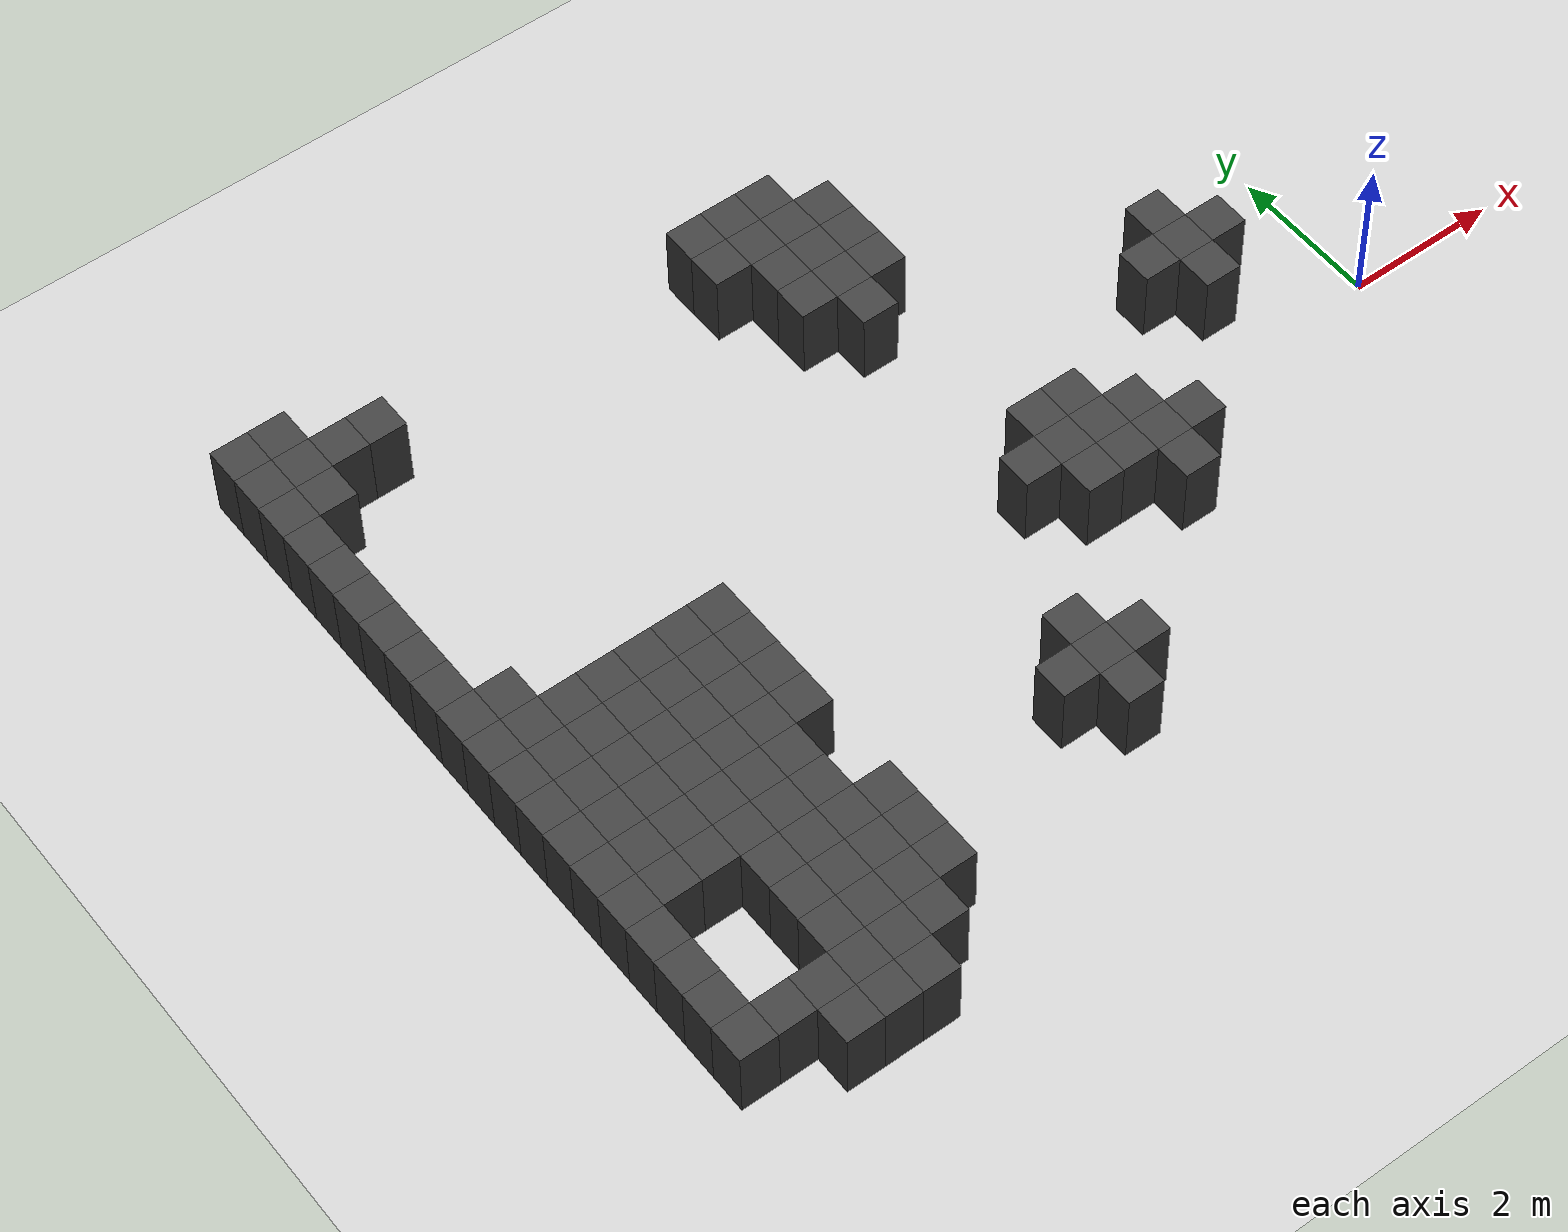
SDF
<sdf version="1.7">
 <world name="map_9152">
  <model name="ground_plane">
   <static>true</static>
   <link name="link">
    <collision name="collision">
     <geometry><plane><normal>0 0 1</normal><size>200 200</size></plane></geometry>
    </collision>
    <visual name="visual">
     <geometry><plane><normal>0 0 1</normal><size>200 200</size></plane></geometry>
     <material><ambient>0.8 0.8 0.8 1</ambient><diffuse>0.8 0.8 0.8 1</diffuse></material>
    </visual>
   </link>
  </model>
  <model name="maze_environment">
   <static>true</static>
   <link name="wall_256">
    <pose>-12.250 5.250 0.500 0 0 0</pose>
    <collision name="col"><geometry><box><size>0.5 0.5 1.0</size></box></geometry></collision>
    <visual name="vis">
     <geometry><box><size>0.5 0.5 1.0</size></box></geometry>
     <material><ambient>0.15 0.15 0.15 1</ambient><diffuse>0.25 0.25 0.25 1</diffuse></material>
    </visual>
   </link>
   <link name="wall_257">
    <pose>-11.750 5.250 0.500 0 0 0</pose>
    <collision name="col"><geometry><box><size>0.5 0.5 1.0</size></box></geometry></collision>
    <visual name="vis">
     <geometry><box><size>0.5 0.5 1.0</size></box></geometry>
     <material><ambient>0.15 0.15 0.15 1</ambient><diffuse>0.25 0.25 0.25 1</diffuse></material>
    </visual>
   </link>
   <link name="wall_282">
    <pose>-12.250 4.750 0.500 0 0 0</pose>
    <collision name="col"><geometry><box><size>0.5 0.5 1.0</size></box></geometry></collision>
    <visual name="vis">
     <geometry><box><size>0.5 0.5 1.0</size></box></geometry>
     <material><ambient>0.15 0.15 0.15 1</ambient><diffuse>0.25 0.25 0.25 1</diffuse></material>
    </visual>
   </link>
   <link name="wall_283">
    <pose>-11.750 4.750 0.500 0 0 0</pose>
    <collision name="col"><geometry><box><size>0.5 0.5 1.0</size></box></geometry></collision>
    <visual name="vis">
     <geometry><box><size>0.5 0.5 1.0</size></box></geometry>
     <material><ambient>0.15 0.15 0.15 1</ambient><diffuse>0.25 0.25 0.25 1</diffuse></material>
    </visual>
   </link>
   <link name="wall_284">
    <pose>-11.250 4.750 0.500 0 0 0</pose>
    <collision name="col"><geometry><box><size>0.5 0.5 1.0</size></box></geometry></collision>
    <visual name="vis">
     <geometry><box><size>0.5 0.5 1.0</size></box></geometry>
     <material><ambient>0.15 0.15 0.15 1</ambient><diffuse>0.25 0.25 0.25 1</diffuse></material>
    </visual>
   </link>
   <link name="wall_285">
    <pose>-10.750 4.750 0.500 0 0 0</pose>
    <collision name="col"><geometry><box><size>0.5 0.5 1.0</size></box></geometry></collision>
    <visual name="vis">
     <geometry><box><size>0.5 0.5 1.0</size></box></geometry>
     <material><ambient>0.15 0.15 0.15 1</ambient><diffuse>0.25 0.25 0.25 1</diffuse></material>
    </visual>
   </link>
   <link name="wall_286">
    <pose>-6.250 4.750 0.500 0 0 0</pose>
    <collision name="col"><geometry><box><size>0.5 0.5 1.0</size></box></geometry></collision>
    <visual name="vis">
     <geometry><box><size>0.5 0.5 1.0</size></box></geometry>
     <material><ambient>0.15 0.15 0.15 1</ambient><diffuse>0.25 0.25 0.25 1</diffuse></material>
    </visual>
   </link>
   <link name="wall_287">
    <pose>-5.750 4.750 0.500 0 0 0</pose>
    <collision name="col"><geometry><box><size>0.5 0.5 1.0</size></box></geometry></collision>
    <visual name="vis">
     <geometry><box><size>0.5 0.5 1.0</size></box></geometry>
     <material><ambient>0.15 0.15 0.15 1</ambient><diffuse>0.25 0.25 0.25 1</diffuse></material>
    </visual>
   </link>
   <link name="wall_288">
    <pose>-5.250 4.750 0.500 0 0 0</pose>
    <collision name="col"><geometry><box><size>0.5 0.5 1.0</size></box></geometry></collision>
    <visual name="vis">
     <geometry><box><size>0.5 0.5 1.0</size></box></geometry>
     <material><ambient>0.15 0.15 0.15 1</ambient><diffuse>0.25 0.25 0.25 1</diffuse></material>
    </visual>
   </link>
   <link name="wall_301">
    <pose>-12.250 4.250 0.500 0 0 0</pose>
    <collision name="col"><geometry><box><size>0.5 0.5 1.0</size></box></geometry></collision>
    <visual name="vis">
     <geometry><box><size>0.5 0.5 1.0</size></box></geometry>
     <material><ambient>0.15 0.15 0.15 1</ambient><diffuse>0.25 0.25 0.25 1</diffuse></material>
    </visual>
   </link>
   <link name="wall_302">
    <pose>-11.750 4.250 0.500 0 0 0</pose>
    <collision name="col"><geometry><box><size>0.5 0.5 1.0</size></box></geometry></collision>
    <visual name="vis">
     <geometry><box><size>0.5 0.5 1.0</size></box></geometry>
     <material><ambient>0.15 0.15 0.15 1</ambient><diffuse>0.25 0.25 0.25 1</diffuse></material>
    </visual>
   </link>
   <link name="wall_303">
    <pose>-6.250 4.250 0.500 0 0 0</pose>
    <collision name="col"><geometry><box><size>0.5 0.5 1.0</size></box></geometry></collision>
    <visual name="vis">
     <geometry><box><size>0.5 0.5 1.0</size></box></geometry>
     <material><ambient>0.15 0.15 0.15 1</ambient><diffuse>0.25 0.25 0.25 1</diffuse></material>
    </visual>
   </link>
   <link name="wall_304">
    <pose>-5.750 4.250 0.500 0 0 0</pose>
    <collision name="col"><geometry><box><size>0.5 0.5 1.0</size></box></geometry></collision>
    <visual name="vis">
     <geometry><box><size>0.5 0.5 1.0</size></box></geometry>
     <material><ambient>0.15 0.15 0.15 1</ambient><diffuse>0.25 0.25 0.25 1</diffuse></material>
    </visual>
   </link>
   <link name="wall_305">
    <pose>-5.250 4.250 0.500 0 0 0</pose>
    <collision name="col"><geometry><box><size>0.5 0.5 1.0</size></box></geometry></collision>
    <visual name="vis">
     <geometry><box><size>0.5 0.5 1.0</size></box></geometry>
     <material><ambient>0.15 0.15 0.15 1</ambient><diffuse>0.25 0.25 0.25 1</diffuse></material>
    </visual>
   </link>
   <link name="wall_306">
    <pose>-4.750 4.250 0.500 0 0 0</pose>
    <collision name="col"><geometry><box><size>0.5 0.5 1.0</size></box></geometry></collision>
    <visual name="vis">
     <geometry><box><size>0.5 0.5 1.0</size></box></geometry>
     <material><ambient>0.15 0.15 0.15 1</ambient><diffuse>0.25 0.25 0.25 1</diffuse></material>
    </visual>
   </link>
   <link name="wall_312">
    <pose>-12.250 3.750 0.500 0 0 0</pose>
    <collision name="col"><geometry><box><size>0.5 0.5 1.0</size></box></geometry></collision>
    <visual name="vis">
     <geometry><box><size>0.5 0.5 1.0</size></box></geometry>
     <material><ambient>0.15 0.15 0.15 1</ambient><diffuse>0.25 0.25 0.25 1</diffuse></material>
    </visual>
   </link>
   <link name="wall_313">
    <pose>-5.750 3.750 0.500 0 0 0</pose>
    <collision name="col"><geometry><box><size>0.5 0.5 1.0</size></box></geometry></collision>
    <visual name="vis">
     <geometry><box><size>0.5 0.5 1.0</size></box></geometry>
     <material><ambient>0.15 0.15 0.15 1</ambient><diffuse>0.25 0.25 0.25 1</diffuse></material>
    </visual>
   </link>
   <link name="wall_314">
    <pose>-5.250 3.750 0.500 0 0 0</pose>
    <collision name="col"><geometry><box><size>0.5 0.5 1.0</size></box></geometry></collision>
    <visual name="vis">
     <geometry><box><size>0.5 0.5 1.0</size></box></geometry>
     <material><ambient>0.15 0.15 0.15 1</ambient><diffuse>0.25 0.25 0.25 1</diffuse></material>
    </visual>
   </link>
   <link name="wall_315">
    <pose>-4.750 3.750 0.500 0 0 0</pose>
    <collision name="col"><geometry><box><size>0.5 0.5 1.0</size></box></geometry></collision>
    <visual name="vis">
     <geometry><box><size>0.5 0.5 1.0</size></box></geometry>
     <material><ambient>0.15 0.15 0.15 1</ambient><diffuse>0.25 0.25 0.25 1</diffuse></material>
    </visual>
   </link>
   <link name="wall_324">
    <pose>-12.250 3.250 0.500 0 0 0</pose>
    <collision name="col"><geometry><box><size>0.5 0.5 1.0</size></box></geometry></collision>
    <visual name="vis">
     <geometry><box><size>0.5 0.5 1.0</size></box></geometry>
     <material><ambient>0.15 0.15 0.15 1</ambient><diffuse>0.25 0.25 0.25 1</diffuse></material>
    </visual>
   </link>
   <link name="wall_325">
    <pose>-5.750 3.250 0.500 0 0 0</pose>
    <collision name="col"><geometry><box><size>0.5 0.5 1.0</size></box></geometry></collision>
    <visual name="vis">
     <geometry><box><size>0.5 0.5 1.0</size></box></geometry>
     <material><ambient>0.15 0.15 0.15 1</ambient><diffuse>0.25 0.25 0.25 1</diffuse></material>
    </visual>
   </link>
   <link name="wall_326">
    <pose>-5.250 3.250 0.500 0 0 0</pose>
    <collision name="col"><geometry><box><size>0.5 0.5 1.0</size></box></geometry></collision>
    <visual name="vis">
     <geometry><box><size>0.5 0.5 1.0</size></box></geometry>
     <material><ambient>0.15 0.15 0.15 1</ambient><diffuse>0.25 0.25 0.25 1</diffuse></material>
    </visual>
   </link>
   <link name="wall_327">
    <pose>-4.750 3.250 0.500 0 0 0</pose>
    <collision name="col"><geometry><box><size>0.5 0.5 1.0</size></box></geometry></collision>
    <visual name="vis">
     <geometry><box><size>0.5 0.5 1.0</size></box></geometry>
     <material><ambient>0.15 0.15 0.15 1</ambient><diffuse>0.25 0.25 0.25 1</diffuse></material>
    </visual>
   </link>
   <link name="wall_339">
    <pose>-12.250 2.750 0.500 0 0 0</pose>
    <collision name="col"><geometry><box><size>0.5 0.5 1.0</size></box></geometry></collision>
    <visual name="vis">
     <geometry><box><size>0.5 0.5 1.0</size></box></geometry>
     <material><ambient>0.15 0.15 0.15 1</ambient><diffuse>0.25 0.25 0.25 1</diffuse></material>
    </visual>
   </link>
   <link name="wall_340">
    <pose>-5.250 2.750 0.500 0 0 0</pose>
    <collision name="col"><geometry><box><size>0.5 0.5 1.0</size></box></geometry></collision>
    <visual name="vis">
     <geometry><box><size>0.5 0.5 1.0</size></box></geometry>
     <material><ambient>0.15 0.15 0.15 1</ambient><diffuse>0.25 0.25 0.25 1</diffuse></material>
    </visual>
   </link>
   <link name="wall_352">
    <pose>-12.250 2.250 0.500 0 0 0</pose>
    <collision name="col"><geometry><box><size>0.5 0.5 1.0</size></box></geometry></collision>
    <visual name="vis">
     <geometry><box><size>0.5 0.5 1.0</size></box></geometry>
     <material><ambient>0.15 0.15 0.15 1</ambient><diffuse>0.25 0.25 0.25 1</diffuse></material>
    </visual>
   </link>
   <link name="wall_364">
    <pose>-12.250 1.750 0.500 0 0 0</pose>
    <collision name="col"><geometry><box><size>0.5 0.5 1.0</size></box></geometry></collision>
    <visual name="vis">
     <geometry><box><size>0.5 0.5 1.0</size></box></geometry>
     <material><ambient>0.15 0.15 0.15 1</ambient><diffuse>0.25 0.25 0.25 1</diffuse></material>
    </visual>
   </link>
   <link name="wall_365">
    <pose>-1.750 1.750 0.500 0 0 0</pose>
    <collision name="col"><geometry><box><size>0.5 0.5 1.0</size></box></geometry></collision>
    <visual name="vis">
     <geometry><box><size>0.5 0.5 1.0</size></box></geometry>
     <material><ambient>0.15 0.15 0.15 1</ambient><diffuse>0.25 0.25 0.25 1</diffuse></material>
    </visual>
   </link>
   <link name="wall_372">
    <pose>-12.250 1.250 0.500 0 0 0</pose>
    <collision name="col"><geometry><box><size>0.5 0.5 1.0</size></box></geometry></collision>
    <visual name="vis">
     <geometry><box><size>0.5 0.5 1.0</size></box></geometry>
     <material><ambient>0.15 0.15 0.15 1</ambient><diffuse>0.25 0.25 0.25 1</diffuse></material>
    </visual>
   </link>
   <link name="wall_373">
    <pose>-2.250 1.250 0.500 0 0 0</pose>
    <collision name="col"><geometry><box><size>0.5 0.5 1.0</size></box></geometry></collision>
    <visual name="vis">
     <geometry><box><size>0.5 0.5 1.0</size></box></geometry>
     <material><ambient>0.15 0.15 0.15 1</ambient><diffuse>0.25 0.25 0.25 1</diffuse></material>
    </visual>
   </link>
   <link name="wall_374">
    <pose>-1.750 1.250 0.500 0 0 0</pose>
    <collision name="col"><geometry><box><size>0.5 0.5 1.0</size></box></geometry></collision>
    <visual name="vis">
     <geometry><box><size>0.5 0.5 1.0</size></box></geometry>
     <material><ambient>0.15 0.15 0.15 1</ambient><diffuse>0.25 0.25 0.25 1</diffuse></material>
    </visual>
   </link>
   <link name="wall_375">
    <pose>-1.250 1.250 0.500 0 0 0</pose>
    <collision name="col"><geometry><box><size>0.5 0.5 1.0</size></box></geometry></collision>
    <visual name="vis">
     <geometry><box><size>0.5 0.5 1.0</size></box></geometry>
     <material><ambient>0.15 0.15 0.15 1</ambient><diffuse>0.25 0.25 0.25 1</diffuse></material>
    </visual>
   </link>
   <link name="wall_382">
    <pose>-12.250 0.750 0.500 0 0 0</pose>
    <collision name="col"><geometry><box><size>0.5 0.5 1.0</size></box></geometry></collision>
    <visual name="vis">
     <geometry><box><size>0.5 0.5 1.0</size></box></geometry>
     <material><ambient>0.15 0.15 0.15 1</ambient><diffuse>0.25 0.25 0.25 1</diffuse></material>
    </visual>
   </link>
   <link name="wall_383">
    <pose>-11.750 0.750 0.500 0 0 0</pose>
    <collision name="col"><geometry><box><size>0.5 0.5 1.0</size></box></geometry></collision>
    <visual name="vis">
     <geometry><box><size>0.5 0.5 1.0</size></box></geometry>
     <material><ambient>0.15 0.15 0.15 1</ambient><diffuse>0.25 0.25 0.25 1</diffuse></material>
    </visual>
   </link>
   <link name="wall_384">
    <pose>-1.750 0.750 0.500 0 0 0</pose>
    <collision name="col"><geometry><box><size>0.5 0.5 1.0</size></box></geometry></collision>
    <visual name="vis">
     <geometry><box><size>0.5 0.5 1.0</size></box></geometry>
     <material><ambient>0.15 0.15 0.15 1</ambient><diffuse>0.25 0.25 0.25 1</diffuse></material>
    </visual>
   </link>
   <link name="wall_391">
    <pose>-12.250 0.250 0.500 0 0 0</pose>
    <collision name="col"><geometry><box><size>0.5 0.5 1.0</size></box></geometry></collision>
    <visual name="vis">
     <geometry><box><size>0.5 0.5 1.0</size></box></geometry>
     <material><ambient>0.15 0.15 0.15 1</ambient><diffuse>0.25 0.25 0.25 1</diffuse></material>
    </visual>
   </link>
   <link name="wall_392">
    <pose>-11.750 0.250 0.500 0 0 0</pose>
    <collision name="col"><geometry><box><size>0.5 0.5 1.0</size></box></geometry></collision>
    <visual name="vis">
     <geometry><box><size>0.5 0.5 1.0</size></box></geometry>
     <material><ambient>0.15 0.15 0.15 1</ambient><diffuse>0.25 0.25 0.25 1</diffuse></material>
    </visual>
   </link>
   <link name="wall_393">
    <pose>-11.250 0.250 0.500 0 0 0</pose>
    <collision name="col"><geometry><box><size>0.5 0.5 1.0</size></box></geometry></collision>
    <visual name="vis">
     <geometry><box><size>0.5 0.5 1.0</size></box></geometry>
     <material><ambient>0.15 0.15 0.15 1</ambient><diffuse>0.25 0.25 0.25 1</diffuse></material>
    </visual>
   </link>
   <link name="wall_394">
    <pose>-10.750 0.250 0.500 0 0 0</pose>
    <collision name="col"><geometry><box><size>0.5 0.5 1.0</size></box></geometry></collision>
    <visual name="vis">
     <geometry><box><size>0.5 0.5 1.0</size></box></geometry>
     <material><ambient>0.15 0.15 0.15 1</ambient><diffuse>0.25 0.25 0.25 1</diffuse></material>
    </visual>
   </link>
   <link name="wall_395">
    <pose>-10.250 0.250 0.500 0 0 0</pose>
    <collision name="col"><geometry><box><size>0.5 0.5 1.0</size></box></geometry></collision>
    <visual name="vis">
     <geometry><box><size>0.5 0.5 1.0</size></box></geometry>
     <material><ambient>0.15 0.15 0.15 1</ambient><diffuse>0.25 0.25 0.25 1</diffuse></material>
    </visual>
   </link>
   <link name="wall_396">
    <pose>-9.750 0.250 0.500 0 0 0</pose>
    <collision name="col"><geometry><box><size>0.5 0.5 1.0</size></box></geometry></collision>
    <visual name="vis">
     <geometry><box><size>0.5 0.5 1.0</size></box></geometry>
     <material><ambient>0.15 0.15 0.15 1</ambient><diffuse>0.25 0.25 0.25 1</diffuse></material>
    </visual>
   </link>
   <link name="wall_397">
    <pose>-9.250 0.250 0.500 0 0 0</pose>
    <collision name="col"><geometry><box><size>0.5 0.5 1.0</size></box></geometry></collision>
    <visual name="vis">
     <geometry><box><size>0.5 0.5 1.0</size></box></geometry>
     <material><ambient>0.15 0.15 0.15 1</ambient><diffuse>0.25 0.25 0.25 1</diffuse></material>
    </visual>
   </link>
   <link name="wall_398">
    <pose>-4.750 0.250 0.500 0 0 0</pose>
    <collision name="col"><geometry><box><size>0.5 0.5 1.0</size></box></geometry></collision>
    <visual name="vis">
     <geometry><box><size>0.5 0.5 1.0</size></box></geometry>
     <material><ambient>0.15 0.15 0.15 1</ambient><diffuse>0.25 0.25 0.25 1</diffuse></material>
    </visual>
   </link>
   <link name="wall_399">
    <pose>-4.250 0.250 0.500 0 0 0</pose>
    <collision name="col"><geometry><box><size>0.5 0.5 1.0</size></box></geometry></collision>
    <visual name="vis">
     <geometry><box><size>0.5 0.5 1.0</size></box></geometry>
     <material><ambient>0.15 0.15 0.15 1</ambient><diffuse>0.25 0.25 0.25 1</diffuse></material>
    </visual>
   </link>
   <link name="wall_410">
    <pose>-12.250 -0.250 0.500 0 0 0</pose>
    <collision name="col"><geometry><box><size>0.5 0.5 1.0</size></box></geometry></collision>
    <visual name="vis">
     <geometry><box><size>0.5 0.5 1.0</size></box></geometry>
     <material><ambient>0.15 0.15 0.15 1</ambient><diffuse>0.25 0.25 0.25 1</diffuse></material>
    </visual>
   </link>
   <link name="wall_411">
    <pose>-11.750 -0.250 0.500 0 0 0</pose>
    <collision name="col"><geometry><box><size>0.5 0.5 1.0</size></box></geometry></collision>
    <visual name="vis">
     <geometry><box><size>0.5 0.5 1.0</size></box></geometry>
     <material><ambient>0.15 0.15 0.15 1</ambient><diffuse>0.25 0.25 0.25 1</diffuse></material>
    </visual>
   </link>
   <link name="wall_412">
    <pose>-11.250 -0.250 0.500 0 0 0</pose>
    <collision name="col"><geometry><box><size>0.5 0.5 1.0</size></box></geometry></collision>
    <visual name="vis">
     <geometry><box><size>0.5 0.5 1.0</size></box></geometry>
     <material><ambient>0.15 0.15 0.15 1</ambient><diffuse>0.25 0.25 0.25 1</diffuse></material>
    </visual>
   </link>
   <link name="wall_413">
    <pose>-10.750 -0.250 0.500 0 0 0</pose>
    <collision name="col"><geometry><box><size>0.5 0.5 1.0</size></box></geometry></collision>
    <visual name="vis">
     <geometry><box><size>0.5 0.5 1.0</size></box></geometry>
     <material><ambient>0.15 0.15 0.15 1</ambient><diffuse>0.25 0.25 0.25 1</diffuse></material>
    </visual>
   </link>
   <link name="wall_414">
    <pose>-10.250 -0.250 0.500 0 0 0</pose>
    <collision name="col"><geometry><box><size>0.5 0.5 1.0</size></box></geometry></collision>
    <visual name="vis">
     <geometry><box><size>0.5 0.5 1.0</size></box></geometry>
     <material><ambient>0.15 0.15 0.15 1</ambient><diffuse>0.25 0.25 0.25 1</diffuse></material>
    </visual>
   </link>
   <link name="wall_415">
    <pose>-9.750 -0.250 0.500 0 0 0</pose>
    <collision name="col"><geometry><box><size>0.5 0.5 1.0</size></box></geometry></collision>
    <visual name="vis">
     <geometry><box><size>0.5 0.5 1.0</size></box></geometry>
     <material><ambient>0.15 0.15 0.15 1</ambient><diffuse>0.25 0.25 0.25 1</diffuse></material>
    </visual>
   </link>
   <link name="wall_416">
    <pose>-9.250 -0.250 0.500 0 0 0</pose>
    <collision name="col"><geometry><box><size>0.5 0.5 1.0</size></box></geometry></collision>
    <visual name="vis">
     <geometry><box><size>0.5 0.5 1.0</size></box></geometry>
     <material><ambient>0.15 0.15 0.15 1</ambient><diffuse>0.25 0.25 0.25 1</diffuse></material>
    </visual>
   </link>
   <link name="wall_417">
    <pose>-5.250 -0.250 0.500 0 0 0</pose>
    <collision name="col"><geometry><box><size>0.5 0.5 1.0</size></box></geometry></collision>
    <visual name="vis">
     <geometry><box><size>0.5 0.5 1.0</size></box></geometry>
     <material><ambient>0.15 0.15 0.15 1</ambient><diffuse>0.25 0.25 0.25 1</diffuse></material>
    </visual>
   </link>
   <link name="wall_418">
    <pose>-4.750 -0.250 0.500 0 0 0</pose>
    <collision name="col"><geometry><box><size>0.5 0.5 1.0</size></box></geometry></collision>
    <visual name="vis">
     <geometry><box><size>0.5 0.5 1.0</size></box></geometry>
     <material><ambient>0.15 0.15 0.15 1</ambient><diffuse>0.25 0.25 0.25 1</diffuse></material>
    </visual>
   </link>
   <link name="wall_419">
    <pose>-4.250 -0.250 0.500 0 0 0</pose>
    <collision name="col"><geometry><box><size>0.5 0.5 1.0</size></box></geometry></collision>
    <visual name="vis">
     <geometry><box><size>0.5 0.5 1.0</size></box></geometry>
     <material><ambient>0.15 0.15 0.15 1</ambient><diffuse>0.25 0.25 0.25 1</diffuse></material>
    </visual>
   </link>
   <link name="wall_420">
    <pose>-3.750 -0.250 0.500 0 0 0</pose>
    <collision name="col"><geometry><box><size>0.5 0.5 1.0</size></box></geometry></collision>
    <visual name="vis">
     <geometry><box><size>0.5 0.5 1.0</size></box></geometry>
     <material><ambient>0.15 0.15 0.15 1</ambient><diffuse>0.25 0.25 0.25 1</diffuse></material>
    </visual>
   </link>
   <link name="wall_430">
    <pose>-12.250 -0.750 0.500 0 0 0</pose>
    <collision name="col"><geometry><box><size>0.5 0.5 1.0</size></box></geometry></collision>
    <visual name="vis">
     <geometry><box><size>0.5 0.5 1.0</size></box></geometry>
     <material><ambient>0.15 0.15 0.15 1</ambient><diffuse>0.25 0.25 0.25 1</diffuse></material>
    </visual>
   </link>
   <link name="wall_431">
    <pose>-11.750 -0.750 0.500 0 0 0</pose>
    <collision name="col"><geometry><box><size>0.5 0.5 1.0</size></box></geometry></collision>
    <visual name="vis">
     <geometry><box><size>0.5 0.5 1.0</size></box></geometry>
     <material><ambient>0.15 0.15 0.15 1</ambient><diffuse>0.25 0.25 0.25 1</diffuse></material>
    </visual>
   </link>
   <link name="wall_432">
    <pose>-11.250 -0.750 0.500 0 0 0</pose>
    <collision name="col"><geometry><box><size>0.5 0.5 1.0</size></box></geometry></collision>
    <visual name="vis">
     <geometry><box><size>0.5 0.5 1.0</size></box></geometry>
     <material><ambient>0.15 0.15 0.15 1</ambient><diffuse>0.25 0.25 0.25 1</diffuse></material>
    </visual>
   </link>
   <link name="wall_433">
    <pose>-10.750 -0.750 0.500 0 0 0</pose>
    <collision name="col"><geometry><box><size>0.5 0.5 1.0</size></box></geometry></collision>
    <visual name="vis">
     <geometry><box><size>0.5 0.5 1.0</size></box></geometry>
     <material><ambient>0.15 0.15 0.15 1</ambient><diffuse>0.25 0.25 0.25 1</diffuse></material>
    </visual>
   </link>
   <link name="wall_434">
    <pose>-10.250 -0.750 0.500 0 0 0</pose>
    <collision name="col"><geometry><box><size>0.5 0.5 1.0</size></box></geometry></collision>
    <visual name="vis">
     <geometry><box><size>0.5 0.5 1.0</size></box></geometry>
     <material><ambient>0.15 0.15 0.15 1</ambient><diffuse>0.25 0.25 0.25 1</diffuse></material>
    </visual>
   </link>
   <link name="wall_435">
    <pose>-9.750 -0.750 0.500 0 0 0</pose>
    <collision name="col"><geometry><box><size>0.5 0.5 1.0</size></box></geometry></collision>
    <visual name="vis">
     <geometry><box><size>0.5 0.5 1.0</size></box></geometry>
     <material><ambient>0.15 0.15 0.15 1</ambient><diffuse>0.25 0.25 0.25 1</diffuse></material>
    </visual>
   </link>
   <link name="wall_436">
    <pose>-9.250 -0.750 0.500 0 0 0</pose>
    <collision name="col"><geometry><box><size>0.5 0.5 1.0</size></box></geometry></collision>
    <visual name="vis">
     <geometry><box><size>0.5 0.5 1.0</size></box></geometry>
     <material><ambient>0.15 0.15 0.15 1</ambient><diffuse>0.25 0.25 0.25 1</diffuse></material>
    </visual>
   </link>
   <link name="wall_437">
    <pose>-4.750 -0.750 0.500 0 0 0</pose>
    <collision name="col"><geometry><box><size>0.5 0.5 1.0</size></box></geometry></collision>
    <visual name="vis">
     <geometry><box><size>0.5 0.5 1.0</size></box></geometry>
     <material><ambient>0.15 0.15 0.15 1</ambient><diffuse>0.25 0.25 0.25 1</diffuse></material>
    </visual>
   </link>
   <link name="wall_438">
    <pose>-4.250 -0.750 0.500 0 0 0</pose>
    <collision name="col"><geometry><box><size>0.5 0.5 1.0</size></box></geometry></collision>
    <visual name="vis">
     <geometry><box><size>0.5 0.5 1.0</size></box></geometry>
     <material><ambient>0.15 0.15 0.15 1</ambient><diffuse>0.25 0.25 0.25 1</diffuse></material>
    </visual>
   </link>
   <link name="wall_439">
    <pose>-3.750 -0.750 0.500 0 0 0</pose>
    <collision name="col"><geometry><box><size>0.5 0.5 1.0</size></box></geometry></collision>
    <visual name="vis">
     <geometry><box><size>0.5 0.5 1.0</size></box></geometry>
     <material><ambient>0.15 0.15 0.15 1</ambient><diffuse>0.25 0.25 0.25 1</diffuse></material>
    </visual>
   </link>
   <link name="wall_440">
    <pose>-3.250 -0.750 0.500 0 0 0</pose>
    <collision name="col"><geometry><box><size>0.5 0.5 1.0</size></box></geometry></collision>
    <visual name="vis">
     <geometry><box><size>0.5 0.5 1.0</size></box></geometry>
     <material><ambient>0.15 0.15 0.15 1</ambient><diffuse>0.25 0.25 0.25 1</diffuse></material>
    </visual>
   </link>
   <link name="wall_447">
    <pose>-12.250 -1.250 0.500 0 0 0</pose>
    <collision name="col"><geometry><box><size>0.5 0.5 1.0</size></box></geometry></collision>
    <visual name="vis">
     <geometry><box><size>0.5 0.5 1.0</size></box></geometry>
     <material><ambient>0.15 0.15 0.15 1</ambient><diffuse>0.25 0.25 0.25 1</diffuse></material>
    </visual>
   </link>
   <link name="wall_448">
    <pose>-11.750 -1.250 0.500 0 0 0</pose>
    <collision name="col"><geometry><box><size>0.5 0.5 1.0</size></box></geometry></collision>
    <visual name="vis">
     <geometry><box><size>0.5 0.5 1.0</size></box></geometry>
     <material><ambient>0.15 0.15 0.15 1</ambient><diffuse>0.25 0.25 0.25 1</diffuse></material>
    </visual>
   </link>
   <link name="wall_449">
    <pose>-11.250 -1.250 0.500 0 0 0</pose>
    <collision name="col"><geometry><box><size>0.5 0.5 1.0</size></box></geometry></collision>
    <visual name="vis">
     <geometry><box><size>0.5 0.5 1.0</size></box></geometry>
     <material><ambient>0.15 0.15 0.15 1</ambient><diffuse>0.25 0.25 0.25 1</diffuse></material>
    </visual>
   </link>
   <link name="wall_450">
    <pose>-10.750 -1.250 0.500 0 0 0</pose>
    <collision name="col"><geometry><box><size>0.5 0.5 1.0</size></box></geometry></collision>
    <visual name="vis">
     <geometry><box><size>0.5 0.5 1.0</size></box></geometry>
     <material><ambient>0.15 0.15 0.15 1</ambient><diffuse>0.25 0.25 0.25 1</diffuse></material>
    </visual>
   </link>
   <link name="wall_451">
    <pose>-10.250 -1.250 0.500 0 0 0</pose>
    <collision name="col"><geometry><box><size>0.5 0.5 1.0</size></box></geometry></collision>
    <visual name="vis">
     <geometry><box><size>0.5 0.5 1.0</size></box></geometry>
     <material><ambient>0.15 0.15 0.15 1</ambient><diffuse>0.25 0.25 0.25 1</diffuse></material>
    </visual>
   </link>
   <link name="wall_452">
    <pose>-9.750 -1.250 0.500 0 0 0</pose>
    <collision name="col"><geometry><box><size>0.5 0.5 1.0</size></box></geometry></collision>
    <visual name="vis">
     <geometry><box><size>0.5 0.5 1.0</size></box></geometry>
     <material><ambient>0.15 0.15 0.15 1</ambient><diffuse>0.25 0.25 0.25 1</diffuse></material>
    </visual>
   </link>
   <link name="wall_453">
    <pose>-9.250 -1.250 0.500 0 0 0</pose>
    <collision name="col"><geometry><box><size>0.5 0.5 1.0</size></box></geometry></collision>
    <visual name="vis">
     <geometry><box><size>0.5 0.5 1.0</size></box></geometry>
     <material><ambient>0.15 0.15 0.15 1</ambient><diffuse>0.25 0.25 0.25 1</diffuse></material>
    </visual>
   </link>
   <link name="wall_454">
    <pose>-3.750 -1.250 0.500 0 0 0</pose>
    <collision name="col"><geometry><box><size>0.5 0.5 1.0</size></box></geometry></collision>
    <visual name="vis">
     <geometry><box><size>0.5 0.5 1.0</size></box></geometry>
     <material><ambient>0.15 0.15 0.15 1</ambient><diffuse>0.25 0.25 0.25 1</diffuse></material>
    </visual>
   </link>
   <link name="wall_461">
    <pose>-12.250 -1.750 0.500 0 0 0</pose>
    <collision name="col"><geometry><box><size>0.5 0.5 1.0</size></box></geometry></collision>
    <visual name="vis">
     <geometry><box><size>0.5 0.5 1.0</size></box></geometry>
     <material><ambient>0.15 0.15 0.15 1</ambient><diffuse>0.25 0.25 0.25 1</diffuse></material>
    </visual>
   </link>
   <link name="wall_462">
    <pose>-11.750 -1.750 0.500 0 0 0</pose>
    <collision name="col"><geometry><box><size>0.5 0.5 1.0</size></box></geometry></collision>
    <visual name="vis">
     <geometry><box><size>0.5 0.5 1.0</size></box></geometry>
     <material><ambient>0.15 0.15 0.15 1</ambient><diffuse>0.25 0.25 0.25 1</diffuse></material>
    </visual>
   </link>
   <link name="wall_463">
    <pose>-11.250 -1.750 0.500 0 0 0</pose>
    <collision name="col"><geometry><box><size>0.5 0.5 1.0</size></box></geometry></collision>
    <visual name="vis">
     <geometry><box><size>0.5 0.5 1.0</size></box></geometry>
     <material><ambient>0.15 0.15 0.15 1</ambient><diffuse>0.25 0.25 0.25 1</diffuse></material>
    </visual>
   </link>
   <link name="wall_464">
    <pose>-10.750 -1.750 0.500 0 0 0</pose>
    <collision name="col"><geometry><box><size>0.5 0.5 1.0</size></box></geometry></collision>
    <visual name="vis">
     <geometry><box><size>0.5 0.5 1.0</size></box></geometry>
     <material><ambient>0.15 0.15 0.15 1</ambient><diffuse>0.25 0.25 0.25 1</diffuse></material>
    </visual>
   </link>
   <link name="wall_465">
    <pose>-10.250 -1.750 0.500 0 0 0</pose>
    <collision name="col"><geometry><box><size>0.5 0.5 1.0</size></box></geometry></collision>
    <visual name="vis">
     <geometry><box><size>0.5 0.5 1.0</size></box></geometry>
     <material><ambient>0.15 0.15 0.15 1</ambient><diffuse>0.25 0.25 0.25 1</diffuse></material>
    </visual>
   </link>
   <link name="wall_466">
    <pose>-9.750 -1.750 0.500 0 0 0</pose>
    <collision name="col"><geometry><box><size>0.5 0.5 1.0</size></box></geometry></collision>
    <visual name="vis">
     <geometry><box><size>0.5 0.5 1.0</size></box></geometry>
     <material><ambient>0.15 0.15 0.15 1</ambient><diffuse>0.25 0.25 0.25 1</diffuse></material>
    </visual>
   </link>
   <link name="wall_473">
    <pose>-12.250 -2.250 0.500 0 0 0</pose>
    <collision name="col"><geometry><box><size>0.5 0.5 1.0</size></box></geometry></collision>
    <visual name="vis">
     <geometry><box><size>0.5 0.5 1.0</size></box></geometry>
     <material><ambient>0.15 0.15 0.15 1</ambient><diffuse>0.25 0.25 0.25 1</diffuse></material>
    </visual>
   </link>
   <link name="wall_474">
    <pose>-11.750 -2.250 0.500 0 0 0</pose>
    <collision name="col"><geometry><box><size>0.5 0.5 1.0</size></box></geometry></collision>
    <visual name="vis">
     <geometry><box><size>0.5 0.5 1.0</size></box></geometry>
     <material><ambient>0.15 0.15 0.15 1</ambient><diffuse>0.25 0.25 0.25 1</diffuse></material>
    </visual>
   </link>
   <link name="wall_475">
    <pose>-11.250 -2.250 0.500 0 0 0</pose>
    <collision name="col"><geometry><box><size>0.5 0.5 1.0</size></box></geometry></collision>
    <visual name="vis">
     <geometry><box><size>0.5 0.5 1.0</size></box></geometry>
     <material><ambient>0.15 0.15 0.15 1</ambient><diffuse>0.25 0.25 0.25 1</diffuse></material>
    </visual>
   </link>
   <link name="wall_476">
    <pose>-10.750 -2.250 0.500 0 0 0</pose>
    <collision name="col"><geometry><box><size>0.5 0.5 1.0</size></box></geometry></collision>
    <visual name="vis">
     <geometry><box><size>0.5 0.5 1.0</size></box></geometry>
     <material><ambient>0.15 0.15 0.15 1</ambient><diffuse>0.25 0.25 0.25 1</diffuse></material>
    </visual>
   </link>
   <link name="wall_477">
    <pose>-10.250 -2.250 0.500 0 0 0</pose>
    <collision name="col"><geometry><box><size>0.5 0.5 1.0</size></box></geometry></collision>
    <visual name="vis">
     <geometry><box><size>0.5 0.5 1.0</size></box></geometry>
     <material><ambient>0.15 0.15 0.15 1</ambient><diffuse>0.25 0.25 0.25 1</diffuse></material>
    </visual>
   </link>
   <link name="wall_478">
    <pose>-9.750 -2.250 0.500 0 0 0</pose>
    <collision name="col"><geometry><box><size>0.5 0.5 1.0</size></box></geometry></collision>
    <visual name="vis">
     <geometry><box><size>0.5 0.5 1.0</size></box></geometry>
     <material><ambient>0.15 0.15 0.15 1</ambient><diffuse>0.25 0.25 0.25 1</diffuse></material>
    </visual>
   </link>
   <link name="wall_479">
    <pose>-6.250 -2.250 0.500 0 0 0</pose>
    <collision name="col"><geometry><box><size>0.5 0.5 1.0</size></box></geometry></collision>
    <visual name="vis">
     <geometry><box><size>0.5 0.5 1.0</size></box></geometry>
     <material><ambient>0.15 0.15 0.15 1</ambient><diffuse>0.25 0.25 0.25 1</diffuse></material>
    </visual>
   </link>
   <link name="wall_486">
    <pose>-12.250 -2.750 0.500 0 0 0</pose>
    <collision name="col"><geometry><box><size>0.5 0.5 1.0</size></box></geometry></collision>
    <visual name="vis">
     <geometry><box><size>0.5 0.5 1.0</size></box></geometry>
     <material><ambient>0.15 0.15 0.15 1</ambient><diffuse>0.25 0.25 0.25 1</diffuse></material>
    </visual>
   </link>
   <link name="wall_487">
    <pose>-10.750 -2.750 0.500 0 0 0</pose>
    <collision name="col"><geometry><box><size>0.5 0.5 1.0</size></box></geometry></collision>
    <visual name="vis">
     <geometry><box><size>0.5 0.5 1.0</size></box></geometry>
     <material><ambient>0.15 0.15 0.15 1</ambient><diffuse>0.25 0.25 0.25 1</diffuse></material>
    </visual>
   </link>
   <link name="wall_488">
    <pose>-10.250 -2.750 0.500 0 0 0</pose>
    <collision name="col"><geometry><box><size>0.5 0.5 1.0</size></box></geometry></collision>
    <visual name="vis">
     <geometry><box><size>0.5 0.5 1.0</size></box></geometry>
     <material><ambient>0.15 0.15 0.15 1</ambient><diffuse>0.25 0.25 0.25 1</diffuse></material>
    </visual>
   </link>
   <link name="wall_489">
    <pose>-9.750 -2.750 0.500 0 0 0</pose>
    <collision name="col"><geometry><box><size>0.5 0.5 1.0</size></box></geometry></collision>
    <visual name="vis">
     <geometry><box><size>0.5 0.5 1.0</size></box></geometry>
     <material><ambient>0.15 0.15 0.15 1</ambient><diffuse>0.25 0.25 0.25 1</diffuse></material>
    </visual>
   </link>
   <link name="wall_490">
    <pose>-9.250 -2.750 0.500 0 0 0</pose>
    <collision name="col"><geometry><box><size>0.5 0.5 1.0</size></box></geometry></collision>
    <visual name="vis">
     <geometry><box><size>0.5 0.5 1.0</size></box></geometry>
     <material><ambient>0.15 0.15 0.15 1</ambient><diffuse>0.25 0.25 0.25 1</diffuse></material>
    </visual>
   </link>
   <link name="wall_491">
    <pose>-6.750 -2.750 0.500 0 0 0</pose>
    <collision name="col"><geometry><box><size>0.5 0.5 1.0</size></box></geometry></collision>
    <visual name="vis">
     <geometry><box><size>0.5 0.5 1.0</size></box></geometry>
     <material><ambient>0.15 0.15 0.15 1</ambient><diffuse>0.25 0.25 0.25 1</diffuse></material>
    </visual>
   </link>
   <link name="wall_492">
    <pose>-6.250 -2.750 0.500 0 0 0</pose>
    <collision name="col"><geometry><box><size>0.5 0.5 1.0</size></box></geometry></collision>
    <visual name="vis">
     <geometry><box><size>0.5 0.5 1.0</size></box></geometry>
     <material><ambient>0.15 0.15 0.15 1</ambient><diffuse>0.25 0.25 0.25 1</diffuse></material>
    </visual>
   </link>
   <link name="wall_493">
    <pose>-5.750 -2.750 0.500 0 0 0</pose>
    <collision name="col"><geometry><box><size>0.5 0.5 1.0</size></box></geometry></collision>
    <visual name="vis">
     <geometry><box><size>0.5 0.5 1.0</size></box></geometry>
     <material><ambient>0.15 0.15 0.15 1</ambient><diffuse>0.25 0.25 0.25 1</diffuse></material>
    </visual>
   </link>
   <link name="wall_498">
    <pose>-12.250 -3.250 0.500 0 0 0</pose>
    <collision name="col"><geometry><box><size>0.5 0.5 1.0</size></box></geometry></collision>
    <visual name="vis">
     <geometry><box><size>0.5 0.5 1.0</size></box></geometry>
     <material><ambient>0.15 0.15 0.15 1</ambient><diffuse>0.25 0.25 0.25 1</diffuse></material>
    </visual>
   </link>
   <link name="wall_499">
    <pose>-10.750 -3.250 0.500 0 0 0</pose>
    <collision name="col"><geometry><box><size>0.5 0.5 1.0</size></box></geometry></collision>
    <visual name="vis">
     <geometry><box><size>0.5 0.5 1.0</size></box></geometry>
     <material><ambient>0.15 0.15 0.15 1</ambient><diffuse>0.25 0.25 0.25 1</diffuse></material>
    </visual>
   </link>
   <link name="wall_500">
    <pose>-10.250 -3.250 0.500 0 0 0</pose>
    <collision name="col"><geometry><box><size>0.5 0.5 1.0</size></box></geometry></collision>
    <visual name="vis">
     <geometry><box><size>0.5 0.5 1.0</size></box></geometry>
     <material><ambient>0.15 0.15 0.15 1</ambient><diffuse>0.25 0.25 0.25 1</diffuse></material>
    </visual>
   </link>
   <link name="wall_501">
    <pose>-9.750 -3.250 0.500 0 0 0</pose>
    <collision name="col"><geometry><box><size>0.5 0.5 1.0</size></box></geometry></collision>
    <visual name="vis">
     <geometry><box><size>0.5 0.5 1.0</size></box></geometry>
     <material><ambient>0.15 0.15 0.15 1</ambient><diffuse>0.25 0.25 0.25 1</diffuse></material>
    </visual>
   </link>
   <link name="wall_502">
    <pose>-9.250 -3.250 0.500 0 0 0</pose>
    <collision name="col"><geometry><box><size>0.5 0.5 1.0</size></box></geometry></collision>
    <visual name="vis">
     <geometry><box><size>0.5 0.5 1.0</size></box></geometry>
     <material><ambient>0.15 0.15 0.15 1</ambient><diffuse>0.25 0.25 0.25 1</diffuse></material>
    </visual>
   </link>
   <link name="wall_503">
    <pose>-6.250 -3.250 0.500 0 0 0</pose>
    <collision name="col"><geometry><box><size>0.5 0.5 1.0</size></box></geometry></collision>
    <visual name="vis">
     <geometry><box><size>0.5 0.5 1.0</size></box></geometry>
     <material><ambient>0.15 0.15 0.15 1</ambient><diffuse>0.25 0.25 0.25 1</diffuse></material>
    </visual>
   </link>
   <link name="wall_507">
    <pose>-12.250 -3.750 0.500 0 0 0</pose>
    <collision name="col"><geometry><box><size>0.5 0.5 1.0</size></box></geometry></collision>
    <visual name="vis">
     <geometry><box><size>0.5 0.5 1.0</size></box></geometry>
     <material><ambient>0.15 0.15 0.15 1</ambient><diffuse>0.25 0.25 0.25 1</diffuse></material>
    </visual>
   </link>
   <link name="wall_508">
    <pose>-10.750 -3.750 0.500 0 0 0</pose>
    <collision name="col"><geometry><box><size>0.5 0.5 1.0</size></box></geometry></collision>
    <visual name="vis">
     <geometry><box><size>0.5 0.5 1.0</size></box></geometry>
     <material><ambient>0.15 0.15 0.15 1</ambient><diffuse>0.25 0.25 0.25 1</diffuse></material>
    </visual>
   </link>
   <link name="wall_509">
    <pose>-10.250 -3.750 0.500 0 0 0</pose>
    <collision name="col"><geometry><box><size>0.5 0.5 1.0</size></box></geometry></collision>
    <visual name="vis">
     <geometry><box><size>0.5 0.5 1.0</size></box></geometry>
     <material><ambient>0.15 0.15 0.15 1</ambient><diffuse>0.25 0.25 0.25 1</diffuse></material>
    </visual>
   </link>
   <link name="wall_510">
    <pose>-9.750 -3.750 0.500 0 0 0</pose>
    <collision name="col"><geometry><box><size>0.5 0.5 1.0</size></box></geometry></collision>
    <visual name="vis">
     <geometry><box><size>0.5 0.5 1.0</size></box></geometry>
     <material><ambient>0.15 0.15 0.15 1</ambient><diffuse>0.25 0.25 0.25 1</diffuse></material>
    </visual>
   </link>
   <link name="wall_511">
    <pose>-9.250 -3.750 0.500 0 0 0</pose>
    <collision name="col"><geometry><box><size>0.5 0.5 1.0</size></box></geometry></collision>
    <visual name="vis">
     <geometry><box><size>0.5 0.5 1.0</size></box></geometry>
     <material><ambient>0.15 0.15 0.15 1</ambient><diffuse>0.25 0.25 0.25 1</diffuse></material>
    </visual>
   </link>
   <link name="wall_515">
    <pose>-12.250 -4.250 0.500 0 0 0</pose>
    <collision name="col"><geometry><box><size>0.5 0.5 1.0</size></box></geometry></collision>
    <visual name="vis">
     <geometry><box><size>0.5 0.5 1.0</size></box></geometry>
     <material><ambient>0.15 0.15 0.15 1</ambient><diffuse>0.25 0.25 0.25 1</diffuse></material>
    </visual>
   </link>
   <link name="wall_516">
    <pose>-11.750 -4.250 0.500 0 0 0</pose>
    <collision name="col"><geometry><box><size>0.5 0.5 1.0</size></box></geometry></collision>
    <visual name="vis">
     <geometry><box><size>0.5 0.5 1.0</size></box></geometry>
     <material><ambient>0.15 0.15 0.15 1</ambient><diffuse>0.25 0.25 0.25 1</diffuse></material>
    </visual>
   </link>
   <link name="wall_517">
    <pose>-11.250 -4.250 0.500 0 0 0</pose>
    <collision name="col"><geometry><box><size>0.5 0.5 1.0</size></box></geometry></collision>
    <visual name="vis">
     <geometry><box><size>0.5 0.5 1.0</size></box></geometry>
     <material><ambient>0.15 0.15 0.15 1</ambient><diffuse>0.25 0.25 0.25 1</diffuse></material>
    </visual>
   </link>
   <link name="wall_518">
    <pose>-10.750 -4.250 0.500 0 0 0</pose>
    <collision name="col"><geometry><box><size>0.5 0.5 1.0</size></box></geometry></collision>
    <visual name="vis">
     <geometry><box><size>0.5 0.5 1.0</size></box></geometry>
     <material><ambient>0.15 0.15 0.15 1</ambient><diffuse>0.25 0.25 0.25 1</diffuse></material>
    </visual>
   </link>
   <link name="wall_519">
    <pose>-10.250 -4.250 0.500 0 0 0</pose>
    <collision name="col"><geometry><box><size>0.5 0.5 1.0</size></box></geometry></collision>
    <visual name="vis">
     <geometry><box><size>0.5 0.5 1.0</size></box></geometry>
     <material><ambient>0.15 0.15 0.15 1</ambient><diffuse>0.25 0.25 0.25 1</diffuse></material>
    </visual>
   </link>
   <link name="wall_520">
    <pose>-9.750 -4.250 0.500 0 0 0</pose>
    <collision name="col"><geometry><box><size>0.5 0.5 1.0</size></box></geometry></collision>
    <visual name="vis">
     <geometry><box><size>0.5 0.5 1.0</size></box></geometry>
     <material><ambient>0.15 0.15 0.15 1</ambient><diffuse>0.25 0.25 0.25 1</diffuse></material>
    </visual>
   </link>
   <link name="wall_529">
    <pose>-11.250 -4.750 0.500 0 0 0</pose>
    <collision name="col"><geometry><box><size>0.5 0.5 1.0</size></box></geometry></collision>
    <visual name="vis">
     <geometry><box><size>0.5 0.5 1.0</size></box></geometry>
     <material><ambient>0.15 0.15 0.15 1</ambient><diffuse>0.25 0.25 0.25 1</diffuse></material>
    </visual>
   </link>
   <link name="wall_530">
    <pose>-10.750 -4.750 0.500 0 0 0</pose>
    <collision name="col"><geometry><box><size>0.5 0.5 1.0</size></box></geometry></collision>
    <visual name="vis">
     <geometry><box><size>0.5 0.5 1.0</size></box></geometry>
     <material><ambient>0.15 0.15 0.15 1</ambient><diffuse>0.25 0.25 0.25 1</diffuse></material>
    </visual>
   </link>
   <link name="wall_531">
    <pose>-10.250 -4.750 0.500 0 0 0</pose>
    <collision name="col"><geometry><box><size>0.5 0.5 1.0</size></box></geometry></collision>
    <visual name="vis">
     <geometry><box><size>0.5 0.5 1.0</size></box></geometry>
     <material><ambient>0.15 0.15 0.15 1</ambient><diffuse>0.25 0.25 0.25 1</diffuse></material>
    </visual>
   </link>
  </model>
 </world>
</sdf>
